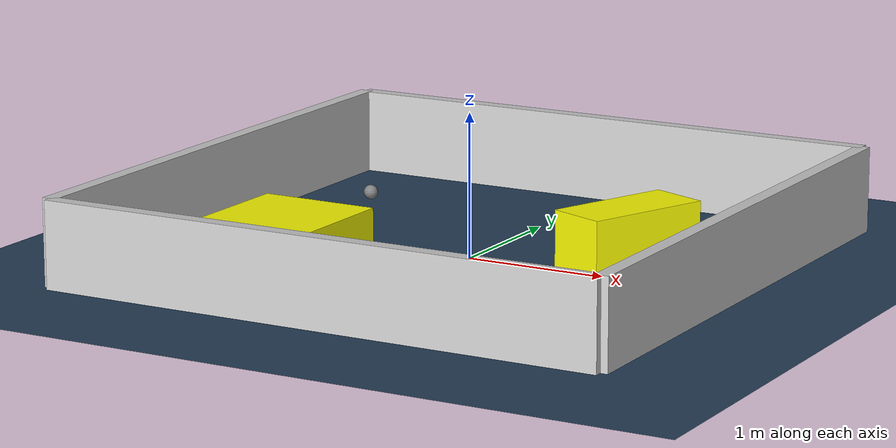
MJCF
<?xml version="1.0" ?>
<mujoco model="generated_environment">
  <option timestep="0.01" integrator="RK4" cone="elliptic"/>
  <default>
    <geom density="1"/>
  </default>
  <asset>
    <texture builtin="gradient" height="3072" rgb1="0.3 0.5 0.7" rgb2="0 0 0" type="skybox" width="512"/>
    <texture builtin="checker" height="300" mark="edge" markrgb="0.8 0.8 0.8" name="groundplane" rgb1="0.2 0.3 0.4" rgb2="0.1 0.2 0.3" type="2d" width="300"/>
    <material name="groundplane" reflectance="0.2" texrepeat="5 5" texture="groundplane" texuniform="true"/>
    <material name="robot" rgba="0.0 1.0 0.0 1"/>
  </asset>
  <worldbody>
    <light dir="0 0 -1" directional="true" pos="0 0 1.5"/>
    <geom condim="4" friction="1.0 0.005 0.001" material="groundplane" name="floor" size="0 0 0.05" type="plane"/>
    <body name="walls">
      <geom name="wall_1" condim="4" pos="-2.0 0.0 0.3" rgba="0.800000011920929 0.800000011920929 0.800000011920929 1.0" size="0.05 2.0 0.3" type="box"/>
      <geom name="wall_2" condim="4" pos="2.0 0.0 0.3" rgba="0.800000011920929 0.800000011920929 0.800000011920929 1.0" size="0.05 2.0 0.3" type="box"/>
      <geom name="wall_3" condim="4" pos="0.0 -2.0 0.3" rgba="0.800000011920929 0.800000011920929 0.800000011920929 1.0" size="2.0 0.05 0.3" type="box"/>
      <geom name="wall_4" condim="4" pos="0.0 2.0 0.3" rgba="0.800000011920929 0.800000011920929 0.800000011920929 1.0" size="2.0 0.05 0.3" type="box"/>
    </body>
    <body name="robot">
      <joint name="joint_x" type="slide" pos="0 0 0" axis="1 0 0"/>
      <joint name="joint_y" type="slide" pos="0 0 0" axis="0 1 0"/>
      <geom name="robot" type="sphere" pos="-1.1439647701368045 0.6228257090551801 0.2" size="0.05" mass="5." friction="1.0 0.005 0.0001" condim="4"/>
      <site name="sensor_ball"/>
    </body>
    <body name="obstacle_1_movable">
      <geom name="obstacle_1_movable" condim="4" pos="-0.8839471038592672 -0.8947230078036297 0.2" euler="0 0 359.2197771033523" friction="1.0 0.005 0.001" rgba="1 1 0 1" size="0.4190225012133073 0.40694521581349985 0.2" type="box" mass="0.1"/>
      <joint type="free"/>
    </body>
    <body name="obstacle_2_movable">
      <geom name="obstacle_2_movable" condim="4" pos="0.9867740048447917 0.40005082542064074 0.2" euler="0 0 158.04909717015013" friction="1.0 0.005 0.001" rgba="1 1 0 1" size="0.21081482149792616 0.4610448080620267 0.2" type="box" mass="0.1"/>
      <joint type="free"/>
    </body>
  </worldbody>
  <actuator>
    <motor name="actuator_x" joint="joint_x" gear="1" ctrlrange="-1 1"/>
    <motor name="actuator_y" joint="joint_y" gear="1" ctrlrange="-1 1"/>
  </actuator>
</mujoco>
